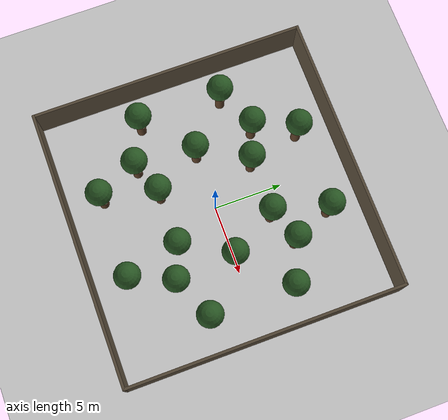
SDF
<?xml version="1.0"?>
<sdf version="1.6">
  <world name="default">

    <include><uri>model://sun</uri></include>
    <include><uri>model://ground_plane</uri></include>

    <scene>
      <ambient>0.6 0.6 0.6 1</ambient>
      <shadows>false</shadows>
    </scene>

    <physics type="ode">
      <max_step_size>0.001</max_step_size>
      <real_time_update_rate>1000</real_time_update_rate>
    </physics>

    <model name="tree_00">
      <static>true</static><pose>4.00 0.00 1.5 0 0 0</pose>
      <link name="link">
        <collision name="c"><geometry><cylinder><radius>0.35</radius><length>3.0</length></cylinder></geometry></collision>
        <visual name="v"><geometry><cylinder><radius>0.35</radius><length>3.0</length></cylinder></geometry>
          <material><ambient>0.18 0.12 0.07 1</ambient><diffuse>0.34 0.23 0.14 1</diffuse></material></visual>
        <visual name="canopy">
          <pose>0 0 1.75 0 0 0</pose>
          <geometry><sphere><radius>0.95</radius></sphere></geometry>
          <material><ambient>0.08 0.16 0.07 1</ambient><diffuse>0.16 0.34 0.14 1</diffuse></material>
        </visual>
      </link>
    </model>
    <model name="tree_01">
      <static>true</static><pose>2.00 3.46 1.5 0 0 0</pose>
      <link name="link">
        <collision name="c"><geometry><cylinder><radius>0.35</radius><length>3.0</length></cylinder></geometry></collision>
        <visual name="v"><geometry><cylinder><radius>0.35</radius><length>3.0</length></cylinder></geometry>
          <material><ambient>0.18 0.12 0.07 1</ambient><diffuse>0.34 0.23 0.14 1</diffuse></material></visual>
        <visual name="canopy">
          <pose>0 0 1.75 0 0 0</pose>
          <geometry><sphere><radius>0.95</radius></sphere></geometry>
          <material><ambient>0.08 0.16 0.07 1</ambient><diffuse>0.16 0.34 0.14 1</diffuse></material>
        </visual>
      </link>
    </model>
    <model name="tree_02">
      <static>true</static><pose>-2.00 3.46 1.5 0 0 0</pose>
      <link name="link">
        <collision name="c"><geometry><cylinder><radius>0.35</radius><length>3.0</length></cylinder></geometry></collision>
        <visual name="v"><geometry><cylinder><radius>0.35</radius><length>3.0</length></cylinder></geometry>
          <material><ambient>0.18 0.12 0.07 1</ambient><diffuse>0.34 0.23 0.14 1</diffuse></material></visual>
        <visual name="canopy">
          <pose>0 0 1.75 0 0 0</pose>
          <geometry><sphere><radius>0.95</radius></sphere></geometry>
          <material><ambient>0.08 0.16 0.07 1</ambient><diffuse>0.16 0.34 0.14 1</diffuse></material>
        </visual>
      </link>
    </model>
    <model name="tree_03">
      <static>true</static><pose>-4.00 0.00 1.5 0 0 0</pose>
      <link name="link">
        <collision name="c"><geometry><cylinder><radius>0.35</radius><length>3.0</length></cylinder></geometry></collision>
        <visual name="v"><geometry><cylinder><radius>0.35</radius><length>3.0</length></cylinder></geometry>
          <material><ambient>0.18 0.12 0.07 1</ambient><diffuse>0.34 0.23 0.14 1</diffuse></material></visual>
        <visual name="canopy">
          <pose>0 0 1.75 0 0 0</pose>
          <geometry><sphere><radius>0.95</radius></sphere></geometry>
          <material><ambient>0.08 0.16 0.07 1</ambient><diffuse>0.16 0.34 0.14 1</diffuse></material>
        </visual>
      </link>
    </model>
    <model name="tree_04">
      <static>true</static><pose>-2.00 -3.46 1.5 0 0 0</pose>
      <link name="link">
        <collision name="c"><geometry><cylinder><radius>0.35</radius><length>3.0</length></cylinder></geometry></collision>
        <visual name="v"><geometry><cylinder><radius>0.35</radius><length>3.0</length></cylinder></geometry>
          <material><ambient>0.18 0.12 0.07 1</ambient><diffuse>0.34 0.23 0.14 1</diffuse></material></visual>
        <visual name="canopy">
          <pose>0 0 1.75 0 0 0</pose>
          <geometry><sphere><radius>0.95</radius></sphere></geometry>
          <material><ambient>0.08 0.16 0.07 1</ambient><diffuse>0.16 0.34 0.14 1</diffuse></material>
        </visual>
      </link>
    </model>
    <model name="tree_05">
      <static>true</static><pose>2.00 -3.46 1.5 0 0 0</pose>
      <link name="link">
        <collision name="c"><geometry><cylinder><radius>0.35</radius><length>3.0</length></cylinder></geometry></collision>
        <visual name="v"><geometry><cylinder><radius>0.35</radius><length>3.0</length></cylinder></geometry>
          <material><ambient>0.18 0.12 0.07 1</ambient><diffuse>0.34 0.23 0.14 1</diffuse></material></visual>
        <visual name="canopy">
          <pose>0 0 1.75 0 0 0</pose>
          <geometry><sphere><radius>0.95</radius></sphere></geometry>
          <material><ambient>0.08 0.16 0.07 1</ambient><diffuse>0.16 0.34 0.14 1</diffuse></material>
        </visual>
      </link>
    </model>
    <model name="tree_06">
      <static>true</static><pose>7.39 3.06 1.5 0 0 0</pose>
      <link name="link">
        <collision name="c"><geometry><cylinder><radius>0.35</radius><length>3.0</length></cylinder></geometry></collision>
        <visual name="v"><geometry><cylinder><radius>0.35</radius><length>3.0</length></cylinder></geometry>
          <material><ambient>0.18 0.12 0.07 1</ambient><diffuse>0.34 0.23 0.14 1</diffuse></material></visual>
        <visual name="canopy">
          <pose>0 0 1.75 0 0 0</pose>
          <geometry><sphere><radius>0.95</radius></sphere></geometry>
          <material><ambient>0.08 0.16 0.07 1</ambient><diffuse>0.16 0.34 0.14 1</diffuse></material>
        </visual>
      </link>
    </model>
    <model name="tree_07">
      <static>true</static><pose>3.06 7.39 1.5 0 0 0</pose>
      <link name="link">
        <collision name="c"><geometry><cylinder><radius>0.35</radius><length>3.0</length></cylinder></geometry></collision>
        <visual name="v"><geometry><cylinder><radius>0.35</radius><length>3.0</length></cylinder></geometry>
          <material><ambient>0.18 0.12 0.07 1</ambient><diffuse>0.34 0.23 0.14 1</diffuse></material></visual>
        <visual name="canopy">
          <pose>0 0 1.75 0 0 0</pose>
          <geometry><sphere><radius>0.95</radius></sphere></geometry>
          <material><ambient>0.08 0.16 0.07 1</ambient><diffuse>0.16 0.34 0.14 1</diffuse></material>
        </visual>
      </link>
    </model>
    <model name="tree_08">
      <static>true</static><pose>-3.06 7.39 1.5 0 0 0</pose>
      <link name="link">
        <collision name="c"><geometry><cylinder><radius>0.35</radius><length>3.0</length></cylinder></geometry></collision>
        <visual name="v"><geometry><cylinder><radius>0.35</radius><length>3.0</length></cylinder></geometry>
          <material><ambient>0.18 0.12 0.07 1</ambient><diffuse>0.34 0.23 0.14 1</diffuse></material></visual>
        <visual name="canopy">
          <pose>0 0 1.75 0 0 0</pose>
          <geometry><sphere><radius>0.95</radius></sphere></geometry>
          <material><ambient>0.08 0.16 0.07 1</ambient><diffuse>0.16 0.34 0.14 1</diffuse></material>
        </visual>
      </link>
    </model>
    <model name="tree_09">
      <static>true</static><pose>-7.39 3.06 1.5 0 0 0</pose>
      <link name="link">
        <collision name="c"><geometry><cylinder><radius>0.35</radius><length>3.0</length></cylinder></geometry></collision>
        <visual name="v"><geometry><cylinder><radius>0.35</radius><length>3.0</length></cylinder></geometry>
          <material><ambient>0.18 0.12 0.07 1</ambient><diffuse>0.34 0.23 0.14 1</diffuse></material></visual>
        <visual name="canopy">
          <pose>0 0 1.75 0 0 0</pose>
          <geometry><sphere><radius>0.95</radius></sphere></geometry>
          <material><ambient>0.08 0.16 0.07 1</ambient><diffuse>0.16 0.34 0.14 1</diffuse></material>
        </visual>
      </link>
    </model>
    <model name="tree_10">
      <static>true</static><pose>-7.39 -3.06 1.5 0 0 0</pose>
      <link name="link">
        <collision name="c"><geometry><cylinder><radius>0.35</radius><length>3.0</length></cylinder></geometry></collision>
        <visual name="v"><geometry><cylinder><radius>0.35</radius><length>3.0</length></cylinder></geometry>
          <material><ambient>0.18 0.12 0.07 1</ambient><diffuse>0.34 0.23 0.14 1</diffuse></material></visual>
        <visual name="canopy">
          <pose>0 0 1.75 0 0 0</pose>
          <geometry><sphere><radius>0.95</radius></sphere></geometry>
          <material><ambient>0.08 0.16 0.07 1</ambient><diffuse>0.16 0.34 0.14 1</diffuse></material>
        </visual>
      </link>
    </model>
    <model name="tree_11">
      <static>true</static><pose>-3.06 -7.39 1.5 0 0 0</pose>
      <link name="link">
        <collision name="c"><geometry><cylinder><radius>0.35</radius><length>3.0</length></cylinder></geometry></collision>
        <visual name="v"><geometry><cylinder><radius>0.35</radius><length>3.0</length></cylinder></geometry>
          <material><ambient>0.18 0.12 0.07 1</ambient><diffuse>0.34 0.23 0.14 1</diffuse></material></visual>
        <visual name="canopy">
          <pose>0 0 1.75 0 0 0</pose>
          <geometry><sphere><radius>0.95</radius></sphere></geometry>
          <material><ambient>0.08 0.16 0.07 1</ambient><diffuse>0.16 0.34 0.14 1</diffuse></material>
        </visual>
      </link>
    </model>
    <model name="tree_12">
      <static>true</static><pose>3.06 -7.39 1.5 0 0 0</pose>
      <link name="link">
        <collision name="c"><geometry><cylinder><radius>0.35</radius><length>3.0</length></cylinder></geometry></collision>
        <visual name="v"><geometry><cylinder><radius>0.35</radius><length>3.0</length></cylinder></geometry>
          <material><ambient>0.18 0.12 0.07 1</ambient><diffuse>0.34 0.23 0.14 1</diffuse></material></visual>
        <visual name="canopy">
          <pose>0 0 1.75 0 0 0</pose>
          <geometry><sphere><radius>0.95</radius></sphere></geometry>
          <material><ambient>0.08 0.16 0.07 1</ambient><diffuse>0.16 0.34 0.14 1</diffuse></material>
        </visual>
      </link>
    </model>
    <model name="tree_13">
      <static>true</static><pose>7.39 -3.06 1.5 0 0 0</pose>
      <link name="link">
        <collision name="c"><geometry><cylinder><radius>0.35</radius><length>3.0</length></cylinder></geometry></collision>
        <visual name="v"><geometry><cylinder><radius>0.35</radius><length>3.0</length></cylinder></geometry>
          <material><ambient>0.18 0.12 0.07 1</ambient><diffuse>0.34 0.23 0.14 1</diffuse></material></visual>
        <visual name="canopy">
          <pose>0 0 1.75 0 0 0</pose>
          <geometry><sphere><radius>0.95</radius></sphere></geometry>
          <material><ambient>0.08 0.16 0.07 1</ambient><diffuse>0.16 0.34 0.14 1</diffuse></material>
        </visual>
      </link>
    </model>
    <model name="tree_14">
      <static>true</static><pose>4.38 4.38 1.5 0 0 0</pose>
      <link name="link">
        <collision name="c"><geometry><cylinder><radius>0.35</radius><length>3.0</length></cylinder></geometry></collision>
        <visual name="v"><geometry><cylinder><radius>0.35</radius><length>3.0</length></cylinder></geometry>
          <material><ambient>0.18 0.12 0.07 1</ambient><diffuse>0.34 0.23 0.14 1</diffuse></material></visual>
        <visual name="canopy">
          <pose>0 0 1.75 0 0 0</pose>
          <geometry><sphere><radius>0.95</radius></sphere></geometry>
          <material><ambient>0.08 0.16 0.07 1</ambient><diffuse>0.16 0.34 0.14 1</diffuse></material>
        </visual>
      </link>
    </model>
    <model name="tree_15">
      <static>true</static><pose>-4.38 4.38 1.5 0 0 0</pose>
      <link name="link">
        <collision name="c"><geometry><cylinder><radius>0.35</radius><length>3.0</length></cylinder></geometry></collision>
        <visual name="v"><geometry><cylinder><radius>0.35</radius><length>3.0</length></cylinder></geometry>
          <material><ambient>0.18 0.12 0.07 1</ambient><diffuse>0.34 0.23 0.14 1</diffuse></material></visual>
        <visual name="canopy">
          <pose>0 0 1.75 0 0 0</pose>
          <geometry><sphere><radius>0.95</radius></sphere></geometry>
          <material><ambient>0.08 0.16 0.07 1</ambient><diffuse>0.16 0.34 0.14 1</diffuse></material>
        </visual>
      </link>
    </model>
    <model name="tree_16">
      <static>true</static><pose>-4.38 -4.38 1.5 0 0 0</pose>
      <link name="link">
        <collision name="c"><geometry><cylinder><radius>0.35</radius><length>3.0</length></cylinder></geometry></collision>
        <visual name="v"><geometry><cylinder><radius>0.35</radius><length>3.0</length></cylinder></geometry>
          <material><ambient>0.18 0.12 0.07 1</ambient><diffuse>0.34 0.23 0.14 1</diffuse></material></visual>
        <visual name="canopy">
          <pose>0 0 1.75 0 0 0</pose>
          <geometry><sphere><radius>0.95</radius></sphere></geometry>
          <material><ambient>0.08 0.16 0.07 1</ambient><diffuse>0.16 0.34 0.14 1</diffuse></material>
        </visual>
      </link>
    </model>
    <model name="tree_17">
      <static>true</static><pose>4.38 -4.38 1.5 0 0 0</pose>
      <link name="link">
        <collision name="c"><geometry><cylinder><radius>0.35</radius><length>3.0</length></cylinder></geometry></collision>
        <visual name="v"><geometry><cylinder><radius>0.35</radius><length>3.0</length></cylinder></geometry>
          <material><ambient>0.18 0.12 0.07 1</ambient><diffuse>0.34 0.23 0.14 1</diffuse></material></visual>
        <visual name="canopy">
          <pose>0 0 1.75 0 0 0</pose>
          <geometry><sphere><radius>0.95</radius></sphere></geometry>
          <material><ambient>0.08 0.16 0.07 1</ambient><diffuse>0.16 0.34 0.14 1</diffuse></material>
        </visual>
      </link>
    </model>
    <model name="wall_north">
      <static>true</static><pose>0.0 10.0 1.5 0 0 0</pose>
      <link name="link">
        <collision name="c"><geometry><box><size>20.2 0.2 3.0</size></box></geometry></collision>
        <visual name="v"><geometry><box><size>20.2 0.2 3.0</size></box></geometry>
          <material><ambient>0.20 0.17 0.13 1</ambient><diffuse>0.34 0.29 0.22 1</diffuse></material></visual>
      </link>
    </model>
    <model name="wall_south">
      <static>true</static><pose>0.0 -10.0 1.5 0 0 0</pose>
      <link name="link">
        <collision name="c"><geometry><box><size>20.2 0.2 3.0</size></box></geometry></collision>
        <visual name="v"><geometry><box><size>20.2 0.2 3.0</size></box></geometry>
          <material><ambient>0.20 0.17 0.13 1</ambient><diffuse>0.34 0.29 0.22 1</diffuse></material></visual>
      </link>
    </model>
    <model name="wall_east">
      <static>true</static><pose>10.0 0.0 1.5 0 0 0</pose>
      <link name="link">
        <collision name="c"><geometry><box><size>0.2 20.2 3.0</size></box></geometry></collision>
        <visual name="v"><geometry><box><size>0.2 20.2 3.0</size></box></geometry>
          <material><ambient>0.20 0.17 0.13 1</ambient><diffuse>0.34 0.29 0.22 1</diffuse></material></visual>
      </link>
    </model>
    <model name="wall_west">
      <static>true</static><pose>-10.0 0.0 1.5 0 0 0</pose>
      <link name="link">
        <collision name="c"><geometry><box><size>0.2 20.2 3.0</size></box></geometry></collision>
        <visual name="v"><geometry><box><size>0.2 20.2 3.0</size></box></geometry>
          <material><ambient>0.20 0.17 0.13 1</ambient><diffuse>0.34 0.29 0.22 1</diffuse></material></visual>
      </link>
    </model>

    <gui>
      <camera name="user_camera">
        <pose>-18 -18 14 0 0.5 0.785</pose>
      </camera>
    </gui>

  </world>
</sdf>
